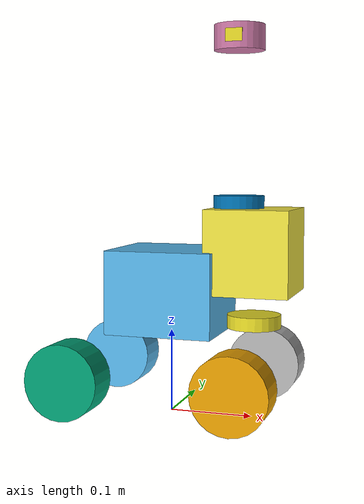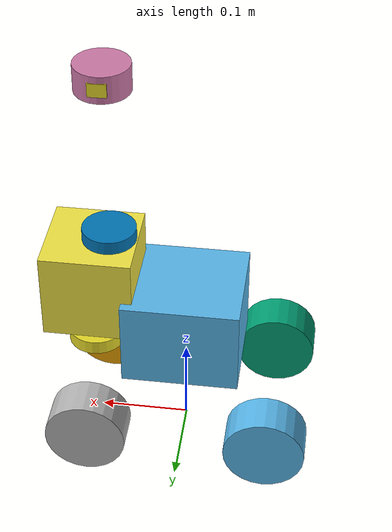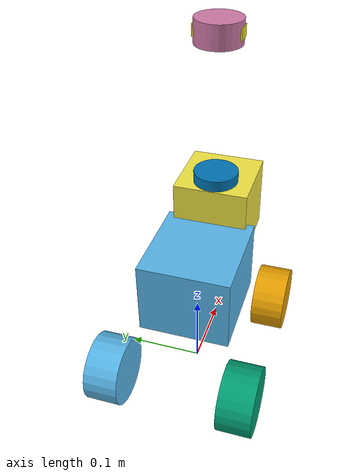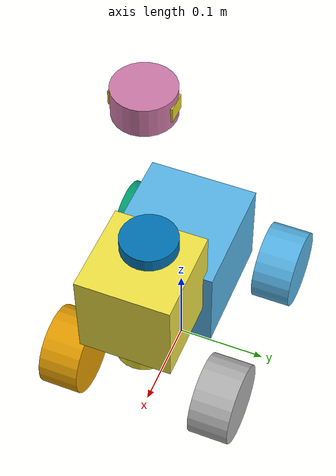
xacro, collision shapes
<?xml version="1.0"?>
<robot xmlns:xacro="http://www.ros.org/wiki/xacro" name="limo" >

  <!-- Import Rviz colors -->
  <xacro:include filename="$(find gtrl)/xacro/bringup/materials.xacro" />

  <!-- LIMO diff-drive robot body -->
  <xacro:include filename="$(find gtrl)/xacro/robot/limo/limo_four_diff.xacro"/>

  <!-- Laser — same sensor as SCOUTMINI baseline -->
  <xacro:include filename="$(find gtrl)/xacro/laser/hokuyo.xacro"/>
  <xacro:laser name="front_laser" parent="base_link" xyz="0.103 0 0.05" rpy="0 0 0" meshes="package://gtrl/meshes/laser"/>

  <!-- Depth camera (unused by training, kept for parity) -->
  <xacro:include filename="$(find gtrl)/xacro/camera/cameraD.xacro"/>
  <xacro:camD name="cameraD" parent="base_link" xyz="0.084 0 0.1" rpy="0 0 0" />

  <!-- FishEye Camera — same plugin as SCOUTMINI baseline, unchanged -->
  <xacro:include filename="$(find gtrl)/xacro/camera/cameraFisheye.xacro"/>
  <xacro:camF name="cameraFishEye" parent="base_link" xyz="0.084 0 0.3" rpy="0 0 0" />

</robot>

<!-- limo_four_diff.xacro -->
<robot name="limo_four_diff" xmlns:xacro="http://ros.org/wiki/xacro">

    <!-- Wheel/laser/imu/depth-camera link macros (unchanged from official) -->
    <xacro:include filename="$(find gtrl)/xacro/robot/limo/limo_xacro.xacro" />

    <!-- ═══════════════════ Properties ═══════════════════ -->
    <xacro:property name="M_PI"               value="3.14159"/>
    <xacro:property name="base_x_size"        value="0.13"/>
    <xacro:property name="base_y_size"        value="0.12"/>
    <xacro:property name="base_z_size"        value="0.10"/>
    <xacro:property name="wheelbase"          value="0.20"/>
    <xacro:property name="track"              value="0.13"/>
    <xacro:property name="wheel_vertical_offset" value="-0.10"/>
    <xacro:property name="base_mass"          value="2.1557"/>
    <xacro:property name="wheel_length"       value="0.045"/>
    <xacro:property name="wheel_radius"       value="0.045"/>

    <!-- ═══════════════════ Base ═══════════════════ -->
    <link name="base_footprint"/>

    <joint name="base_joint" type="fixed">
        <parent link="base_footprint"/>
        <child  link="base_link"/>
        <origin xyz="0.0 0.0 0.15" rpy="0 0 0"/>
    </joint>

    <link name="base_link">
        <!-- Visual: official LIMO mesh -->
        <visual>
            <origin xyz="0 0 -0.15" rpy="0 0 1.57"/>
            <geometry>
                <mesh filename="package://gtrl/xacro/robot/limo/meshes/limo_base.dae" scale="1 1 1"/>
            </geometry>
        </visual>
        <!-- Collision: simple box for performance -->
        <collision>
            <origin xyz="0 0 0" rpy="0 0 0"/>
            <geometry>
                <box size="${base_x_size} ${base_y_size} ${base_z_size}"/>
            </geometry>
        </collision>
    </link>

    <link name="inertial_link">
        <inertial>
            <origin xyz="0.0 0.0 0.0"/>
            <mass value="${base_mass}"/>
            <inertia ixx="0.24" ixy="0" ixz="0"
                     iyy="0.96" iyz="0"
                     izz="0.96"/>
        </inertial>
    </link>
    <joint name="inertial_joint" type="fixed">
        <origin xyz="0 0 0" rpy="0 0 0"/>
        <parent link="base_link"/>
        <child  link="inertial_link"/>
    </joint>

    <!-- ═══════════════════ Laser ═══════════════════ -->
    <xacro:limo_laser parent_prefix="base_link" frame_prefix="laser">
        <origin xyz="0.103 0 -0.034" rpy="0 0 0"/>
    </xacro:limo_laser>

    <!-- ═══════════════════ Depth camera ═══════════════════ -->
    <xacro:limo_depth_camera parent_prefix="base_link" frame_prefix="depth_camera">
        <origin xyz="0.084 0 0.3" rpy="0 0 0"/>
    </xacro:limo_depth_camera>

    <!-- ═══════════════════ IMU ═══════════════════ -->
    <xacro:limo_imu parent_prefix="base_link" frame_prefix="imu">
        <origin xyz="0.0 0 -0.1" rpy="0 0 0"/>
    </xacro:limo_imu>

    <!-- ═══════════════════ Wheels ═══════════════════ -->
    <xacro:limo_wheel parent_prefix="base_link" wheel_prefix="front_left" reflect="1">
        <origin xyz="${wheelbase/2} ${track/2} ${wheel_vertical_offset}" rpy="0 0 0"/>
    </xacro:limo_wheel>

    <xacro:limo_wheel parent_prefix="base_link" wheel_prefix="front_right" reflect="-1">
        <origin xyz="${wheelbase/2} ${-track/2} ${wheel_vertical_offset}" rpy="${M_PI} 0 0"/>
    </xacro:limo_wheel>

    <xacro:limo_wheel parent_prefix="base_link" wheel_prefix="rear_left" reflect="1">
        <origin xyz="${-wheelbase/2} ${track/2} ${wheel_vertical_offset}" rpy="0 0 0"/>
    </xacro:limo_wheel>

    <xacro:limo_wheel parent_prefix="base_link" wheel_prefix="rear_right" reflect="-1">
        <origin xyz="${-wheelbase/2} ${-track/2} ${wheel_vertical_offset}" rpy="${M_PI} 0 0"/>
    </xacro:limo_wheel>

    <!-- ═══════════════════ Wheel friction ═══════════════════ -->
    <gazebo reference="front_left_wheel_link">
        <mu1>100</mu1><mu2>100</mu2><kp>10000000.0</kp><kd>1.0</kd>
        <minDepth>0.01</minDepth><fdir1>1 0 0</fdir1>
    </gazebo>
    <gazebo reference="front_right_wheel_link">
        <mu1>100</mu1><mu2>100</mu2><kp>10000000.0</kp><kd>1.0</kd>
        <minDepth>0.01</minDepth><fdir1>1 0 0</fdir1>
    </gazebo>
    <gazebo reference="rear_left_wheel_link">
        <mu1>100</mu1><mu2>100</mu2><kp>10000000.0</kp><kd>1.0</kd>
        <minDepth>0.01</minDepth><fdir1>1 0 0</fdir1>
    </gazebo>
    <gazebo reference="rear_right_wheel_link">
        <mu1>100</mu1><mu2>100</mu2><kp>10000000.0</kp><kd>1.0</kd>
        <minDepth>0.01</minDepth><fdir1>1 0 0</fdir1>
    </gazebo>

    <!-- ═══════════════════ Diff-drive plugin (ROS 1) ═══════════════════ -->
    <gazebo>
        <plugin name="four_diff_controller" filename="libgazebo_ros_diff_drive.so">
            <updateRate>50</updateRate>
            <leftJoint>front_left_wheel</leftJoint>
            <rightJoint>front_right_wheel</rightJoint>
            <leftJoint>rear_left_wheel</leftJoint>
            <rightJoint>rear_right_wheel</rightJoint>
            <wheelSeparation>0.172</wheelSeparation>
            <wheelDiameter>0.09</wheelDiameter>
            <wheelAcceleration>1.0</wheelAcceleration>
            <wheelTorque>20</wheelTorque>
            <commandTopic>/limo/cmd_vel</commandTopic>
            <odometryTopic>/limo/odom</odometryTopic>
            <odometryFrame>odom</odometryFrame>
            <robotBaseFrame>base_footprint</robotBaseFrame>
            <publishWheelTF>true</publishWheelTF>
            <publishOdomTF>true</publishOdomTF>
            <publishWheelJointState>true</publishWheelJointState>
            <legacyMode>false</legacyMode>
        </plugin>
    </gazebo>

    <!-- ═══════════════════ Laser plugin (ROS 1) ═══════════════════ -->
    <gazebo reference="laser_link">
        <sensor name="laser" type="ray">
            <always_on>true</always_on>
            <visualize>true</visualize>
            <update_rate>10</update_rate>
            <ray>
                <scan>
                    <horizontal>
                        <samples>120</samples>
                        <resolution>1.0</resolution>
                        <min_angle>-3.14159</min_angle>
                        <max_angle>3.14159</max_angle>
                    </horizontal>
                </scan>
                <range>
                    <min>0.3</min>
                    <max>15.0</max>
                    <resolution>0.015</resolution>
                </range>
                <noise>
                    <type>gaussian</type>
                    <mean>0.0</mean>
                    <stddev>0.01</stddev>
                </noise>
            </ray>
            <!-- ROS 1: libgazebo_ros_laser.so publishes directly to /front_laser/scan -->
            <plugin name="laser_plugin" filename="libgazebo_ros_laser.so">
                <topicName>/front_laser/scan</topicName>
                <frameName>laser_link</frameName>
            </plugin>
        </sensor>
    </gazebo>

</robot>

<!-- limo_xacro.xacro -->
<robot name="limo_xacro" xmlns:xacro="http://ros.org/wiki/xacro">
    <xacro:macro name="limo_wheel" params="parent_prefix wheel_prefix reflect *joint_pose">
        <link name="${wheel_prefix}_wheel_link">
            <inertial>
                <origin xyz="0 0 0" />
                <mass value="0.5" />
                <inertia ixx="0.01055" ixy="0" ixz="0" iyy="0.00075" iyz="0" izz="0.01055" />
            </inertial>
            <visual>
                <origin xyz="0 0 0" rpy="0 0 0" />
                <geometry>
                    <mesh filename="package://gtrl/xacro/robot/limo/meshes/limo_wheel.dae" />
                </geometry>
            </visual>
            <collision>
              <origin xyz="0 ${wheel_length/2} 0" rpy="1.57 0 0" />
              <geometry>
                  <cylinder length="${wheel_length}" radius="${wheel_radius}" />
              </geometry>
            </collision>
        </link>

        <joint name="${wheel_prefix}_wheel" type="continuous">
            <parent link="${parent_prefix}"/>
            <child link="${wheel_prefix}_wheel_link"/>
            <xacro:insert_block name="joint_pose"/>
            <axis xyz="0 ${reflect*1} 0"/>
        </joint>
    </xacro:macro>

    <xacro:macro name="limo_laser" params="parent_prefix frame_prefix *joint_pose">
        <link name='${frame_prefix}_link'>
            <pose>0 0 0 0 0 0</pose>
            <inertial>
                <mass value="0.1"/>
                <origin xyz="0.0 0 0" rpy="0 0 0"/>
                <inertia
                    ixx="1e-6" ixy="0" ixz="0"
                    iyy="1e-6" iyz="0"
                    izz="1e-6"
                />
            </inertial>
            <visual name='laser_visual'>
                <origin xyz="0 0 0" rpy="0 0 0"/>
                <geometry>
                    <cylinder radius="0.02" length="0.01"/>
                </geometry>
                <material name='laser_material'>
                    <ambient>0.1 0.1 0.1 1</ambient>
                    <diffuse>0.1 0.1 0.2 1</diffuse>
                    <specular>0 0 0 0</specular>
                    <emissive>0 0 0 1</emissive>
                </material>
            </visual>
            <collision name='laser_collision'>
                <origin xyz="0 0 0" rpy="0 0 0"/>
                <geometry>
                    <cylinder radius="0.032" length="0.016"/>
                </geometry>
            </collision>
        </link>
        <joint type="fixed" name="laser_joint">
            <xacro:insert_block name="joint_pose"/>
            <child link="${frame_prefix}_link"/>
            <parent link="${parent_prefix}"/>
        </joint>
        <gazebo reference="${frame_prefix}_link">
            <material>Gazebo/Yellow</material>
        </gazebo>
    </xacro:macro>

    <xacro:macro name="limo_depth_camera" params="parent_prefix frame_prefix *joint_pose">
        <link name='${frame_prefix}_link'>
            <pose>0 0 0 0 0 0</pose>
            <inertial>
                <mass value="0.1"/>
                <origin xyz="0.0 0 0" rpy="0 0 0"/>
                <inertia
                    ixx="1e-6" ixy="0" ixz="0"
                    iyy="1e-6" iyz="0"
                    izz="1e-6"
                />
            </inertial>
            <visual name='depth_camera_visual'>
                <origin xyz="0 0 0" rpy="0 0 0"/>
                <geometry>
                    <box size="0.02 0.06 0.015"/>
                </geometry>
                <material name='depth_camera_material'>
                    <ambient>0.1 0.1 0.1 1</ambient>
                    <diffuse>0.1 0.1 0.2 1</diffuse>
                    <specular>0 0 0 0</specular>
                    <emissive>0 0 0 1</emissive>
                </material>
            </visual>
            <collision name='depth_camera_collision'>
                <origin xyz="0 0 0" rpy="0 0 0"/>
                <geometry>
                    <box size="0.02 0.06 0.015"/>
                </geometry>
            </collision>

        </link>

        <joint type="fixed" name="depth_camera_joint">
            <xacro:insert_block name="joint_pose"/>
            <child link="${frame_prefix}_link"/>
            <parent link="${parent_prefix}"/>
        </joint>
        <link name="depth_link"></link>

        <joint name="${frame_prefix}_to_camera_joint" type="fixed">
            <origin xyz="0 0 0" rpy="${-M_PI/2} 0 ${-M_PI/2} "/>
            <parent link="${frame_prefix}_link"/>
            <child link="depth_link"/>
          </joint>

        <gazebo reference="${frame_prefix}_link">
            <material>Gazebo/Yellow</material>
        </gazebo>
    </xacro:macro>

    <xacro:macro name="limo_imu" params="parent_prefix frame_prefix  *joint_pose">
        <link name='${frame_prefix}_link'>
            <pose>0 0 0 0 0 0</pose>
            <inertial>
                <mass value="0.01"/>
                <origin xyz="0.0 0 0" rpy="0 0 0"/>
                <inertia
                    ixx="1e-7" ixy="0" ixz="0"
                    iyy="1e-7" iyz="0"
                    izz="1e-7"
                />
            </inertial>
            <visual name='imu_visual'>
                <origin xyz="0 0 0" rpy="0 0 0"/>
                <geometry>
                    <box size="0.001 0.001 0.001"/>
                </geometry>
                <material name='imu_material'>
                    <ambient>0.1 0.1 0.1 1</ambient>
                    <diffuse>0.1 0.1 0.2 1</diffuse>
                    <specular>0 0 0 0</specular>
                    <emissive>0 0 0 1</emissive>
                </material>
            </visual>
            <collision name='imu_collision'>
                <origin xyz="0 0 0" rpy="0 0 0"/>
                <geometry>
                    <box size="0.001 0.001 0.001"/>
                </geometry>
            </collision>
        </link>
        <joint type="fixed" name="imu_joint">
            <xacro:insert_block name="joint_pose"/>
            <child link="${frame_prefix}_link"/>
            <parent link="${parent_prefix}"/>
        </joint>
        <gazebo reference="${frame_prefix}_link">
            <material>Gazebo/Yellow</material>
        </gazebo>
    </xacro:macro>
</robot>

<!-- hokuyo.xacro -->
<robot xmlns:xacro="http://www.ros.org/wiki/xacro">

<!-- Front Laser -->
<xacro:macro name="laser" params="name parent xyz rpy meshes" >

  <joint name="${parent}_${name}_joint" type="fixed">
      <axis xyz="0 0 1" />
      <origin xyz="${xyz}" rpy="${rpy}"/>
      <parent link="${parent}"/>
      <child link="${name}"/>
    </joint>

    <link name="${name}">
      <collision>
        <origin xyz="0 0 0" rpy="0 0 0"/>
        <geometry>
          <box size="0.1 0.1 0.1"/>
        </geometry>
      </collision>
      <visual>
        <origin xyz="0 0 0" rpy="0 0 0"/>
        <geometry>
          <mesh filename="${meshes}/hokuyo.dae"/>
        </geometry>
      </visual>
      <inertial>
        <mass value="1e-5" />
        <origin xyz="0 0 0" rpy="0 0 0"/>
        <inertia ixx="1e-6" ixy="0" ixz="0" iyy="1e-6" iyz="0" izz="1e-6" />
      </inertial>
    </link>

    <gazebo reference="${name}">
        <sensor name="laser" type="ray">
        <pose>0 0 0 0 0 0</pose>
          <ray>
            <scan>
              <horizontal>
                <!-- The URG-04LX-UG01  has  683 steps with 0.35139 Degree resolution -->
                <resolution>1</resolution>
                <max_angle>2.0944</max_angle> <!--2.0944 120 Degree -->
                <min_angle>-2.0944</min_angle> <!-- -120 Degree -->
                <samples>360</samples>
              </horizontal>
            </scan>
            <range>
              <min>0.1</min>
              <max>10</max>
              <resolution>0.05</resolution>
            </range>
          </ray>

          <plugin name="laser" filename="libgazebo_ros_laser.so" >
            <robotNamespace>/</robotNamespace>
            <topicName>${name}/scan</topicName>
            <frameName>${name}</frameName>
          </plugin>

          <always_on>1</always_on>
          <update_rate>100</update_rate>
          <visualize>false</visualize>
        </sensor>
    </gazebo>
</xacro:macro>

</robot>

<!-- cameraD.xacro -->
<robot xmlns:xacro="http://www.ros.org/wiki/xacro" name="scout">

<!-- Camera -->
<xacro:macro name="camD" params="name parent xyz rpy">

  <joint name="${parent}_${name}_joint" type="fixed">
      <axis xyz="0.19 0 0.075" />
      <origin xyz="${xyz}" rpy="${rpy}"/>
      <parent link="${parent}"/>
      <child link="${name}"/>
  </joint>

  <!-- Camera -->
  <link name="${name}">
    <inertial>
      <mass value="1e-5" />
      <origin xyz="0 0 0" rpy="0 0 0"/>
      <inertia ixx="1e-6" ixy="0" ixz="0" iyy="1e-6" iyz="0" izz="1e-6" />
    </inertial>
    <collision>
      <origin xyz="0 0 0" rpy="0 0 0"/>
      <geometry>
        <cylinder radius="0.03" length="0.03"/>
      </geometry>
    </collision>
  </link>
  <gazebo reference="${name}">
    <material value="Gazebo/Grey"/>
  </gazebo>

  <link name="depth_frame"/>

  <joint name="depth_joint" type="fixed">
      <origin xyz="0 -0.1 0" rpy="-1.57 0 -1.57"/>
      <parent link="${name}"/>
      <child link="depth_frame"/>
  </joint>

  <gazebo reference="${name}">
    <sensor type="depth" name="camera2">
      <update_rate>10.0</update_rate>
      <camera name="head">
        <horizontal_fov>1.047198</horizontal_fov>
        <image>
          <width>640</width>
          <height>480</height>
          <format>B8G8R8</format>
        </image>
        <clip>
          <near>0.05</near>
          <far>10</far>
        </clip>
        <noise>
          <type>gaussian</type>
          <!-- Noise is sampled independently per pixel on each frame.
               That pixel's noise value is added to each of its color
               channels, which at that point lie in the range [0,1]. -->
          <mean>0.0</mean>
          <stddev>0.0</stddev>
        </noise>
      </camera>
      <plugin name="camera_plugin" filename="libgazebo_ros_depth_camera.so">
          <baseline>0.2</baseline>
          <alwaysOn>true</alwaysOn>
          <updateRate>30</updateRate>
          <cameraName>camera_ir</cameraName>
          <robotNamespace>/</robotNamespace>
          <depthImageTopicName>/camera/depth/image_raw</depthImageTopicName>
          <depthImageInfoTopicName>/camera/depth/camera_info</depthImageInfoTopicName>
          <pointCloudTopicName>/camera/depth/points</pointCloudTopicName>
          <frameName>depth_frame</frameName>
          <pointCloudCutoff>0.05</pointCloudCutoff>
          <distortionK1>0</distortionK1>
          <distortionK2>0</distortionK2>
          <distortionK3>0</distortionK3>
          <distortionT1>0</distortionT1>
          <distortionT2>0</distortionT2>
          <CxPrime>0</CxPrime>
          <Cx>0</Cx>
          <Cy>0</Cy>
          <focalLength>0</focalLength>
          <hackBaseline>0</hackBaseline>
      </plugin>

    </sensor>
  </gazebo>

</xacro:macro>
</robot>

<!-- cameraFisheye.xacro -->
<robot xmlns:xacro="http://www.ros.org/wiki/xacro" name="scout">

<!-- Camera -->
<xacro:macro name="camF" params="name parent xyz rpy">

  <joint name="${parent}_${name}_joint" type="fixed">
      <axis xyz="0.19 0 0.5" />
      <origin xyz="${xyz}" rpy="${rpy}"/>
      <parent link="${parent}"/>
      <child link="${name}"/>
  </joint>

  <!-- Camera -->
  <link name="${name}">
    <inertial>
      <mass value="1e-5" />
      <origin xyz="0 0 0" rpy="0 0 0"/>
      <inertia ixx="1e-6" ixy="0" ixz="0" iyy="1e-6" iyz="0" izz="1e-6" />
    </inertial>
    <collision>
      <origin xyz="0 0 0" rpy="0 0 0"/>
      <geometry>
        <cylinder radius="0.03" length="0.03"/>
      </geometry>
    </collision>
  </link>
  <gazebo reference="${name}">
    <material value="Gazebo/Grey"/>
  </gazebo>

  <link name="fisheye_frame"/>

  <joint name="fisheye_joint" type="fixed">
      <origin xyz="0 0 0" rpy="-1.57 0 -1.57"/>
      <parent link="${name}"/>
      <child link="fisheye_frame"/>
  </joint>

  <gazebo reference="${name}">
    <sensor type="wideanglecamera" name="camera2">
      <update_rate>30.0</update_rate>
      <camera name="head">
        <horizontal_fov>3.84</horizontal_fov>
        <image>
          <width>640</width>
          <height>480</height>
          <format>B8G8R8</format>
        </image>
        <clip>
          <near>0.01</near>
          <far>10</far>
        </clip>
        <lens>
          <!-- type element is mandatory -->
          <type>custom</type>

          <!-- manually defined mapping function r = c1*f*fun(theta/c2 + c3) -->
          <!-- More information here: https://en.wikipedia.org/wiki/Fisheye_lens#Mapping_function -->
          <custom_function>
          <c1>3</c1>   <!-- linear scaling -->
          <c2>8</c2>      <!-- angle scaling -->
          <f>1.0</f>      <!-- one more scaling parameter -->
          <fun>tan</fun>  <!-- one of sin,tan,id -->
          </custom_function>

          <!-- if it is set to `true` your horizontal FOV will ramain as defined -->
          <!-- othervise it depends on lens type and custom function, if there is one -->
          <scale_to_hfov>true</scale_to_hfov>
          <!-- resolution of the cubemap texture, the highter it is - the sharper is your image -->
          <env_texture_size>512</env_texture_size>
        </lens>
        <noise>
          <type>gaussian</type>
          <mean>0.0</mean>
          <stddev>0.05</stddev>
        </noise>
      </camera>
      <plugin name="camera_plugin" filename="libgazebo_ros_camera.so">
          <baseline>0.2</baseline>
          <alwaysOn>true</alwaysOn>
          <updateRate>0</updateRate>
          <cameraName>camera_fish</cameraName>
          <imageTopicName>/camera/fisheye/image_raw</imageTopicName>
          <cameraInfoTopicName>/camera/fisheye/camera_info</cameraInfoTopicName>
          <frameName>fisheye_frame</frameName>
          <pointCloudCutoff>0.01</pointCloudCutoff>
          <distortionK1>-0.8</distortionK1>
          <distortionK2>0.12</distortionK2>
          <distortionK3>10</distortionK3>
          <distortionT1>0</distortionT1>
          <distortionT2>0</distortionT2>
          <CxPrime>0</CxPrime>
          <Cx>0</Cx>
          <Cy>0</Cy>
          <focalLength>0</focalLength>
          <hackBaseline>0</hackBaseline>
        </plugin>
    </sensor>
  </gazebo>

</xacro:macro>
</robot>
